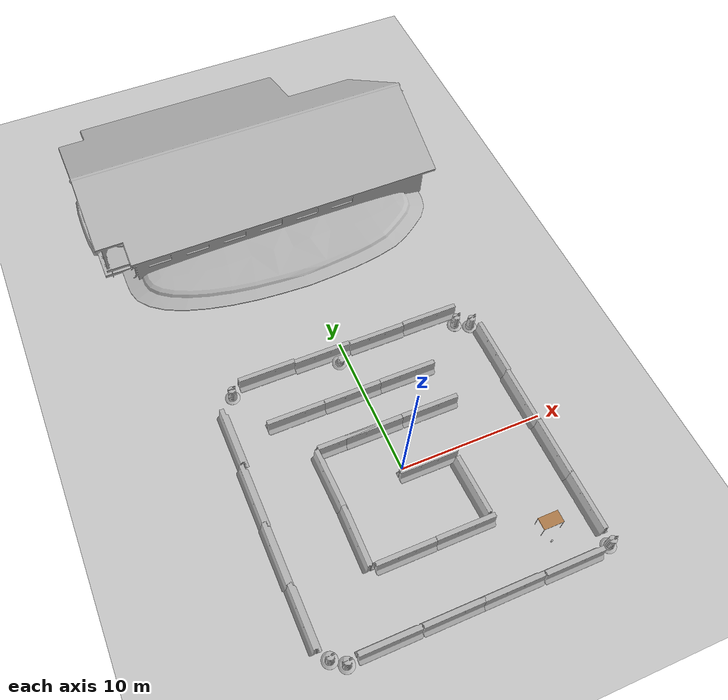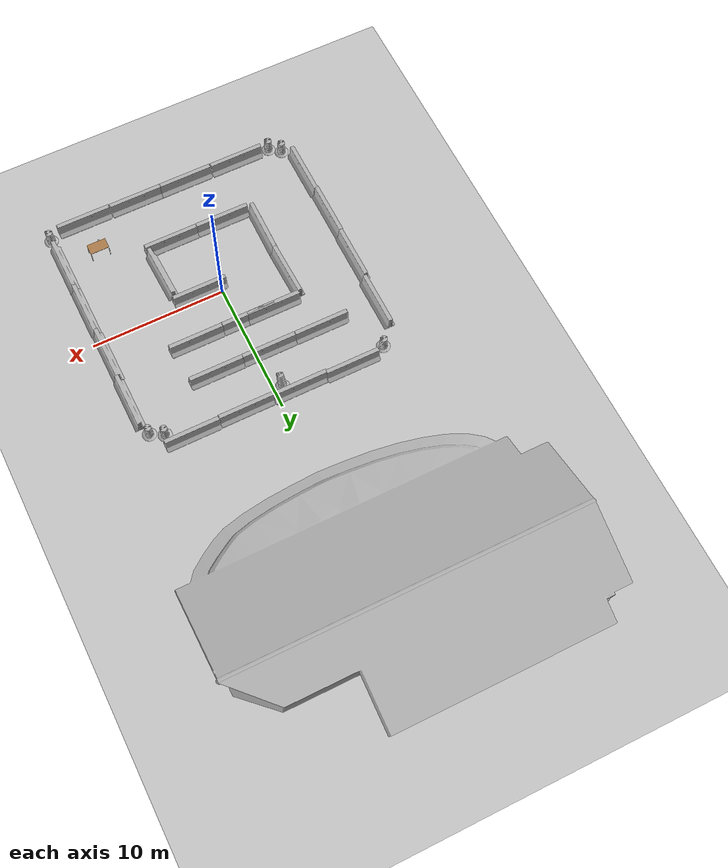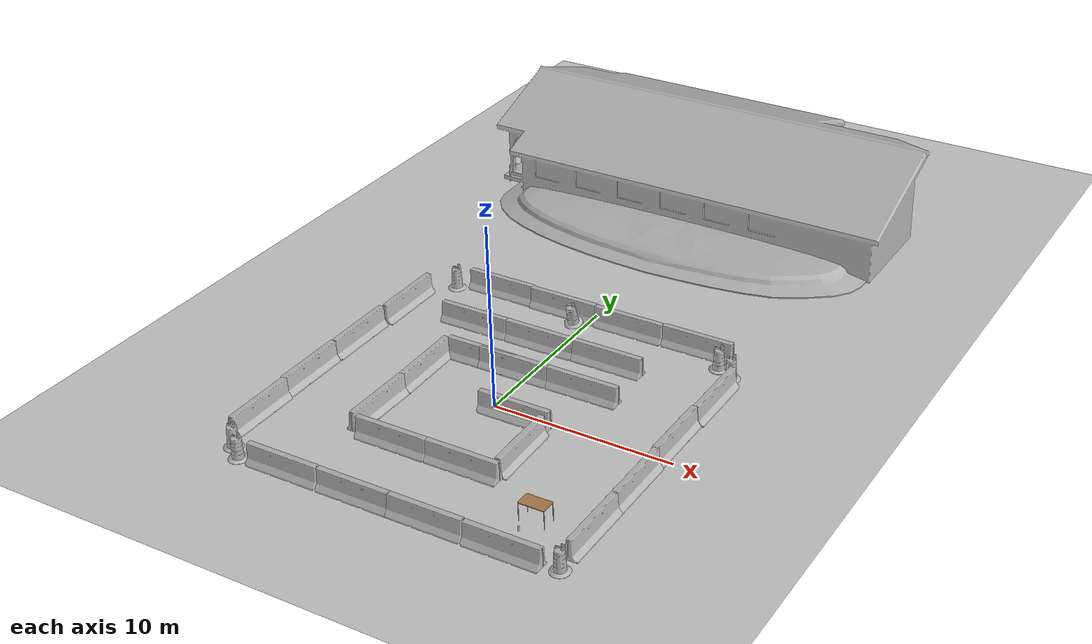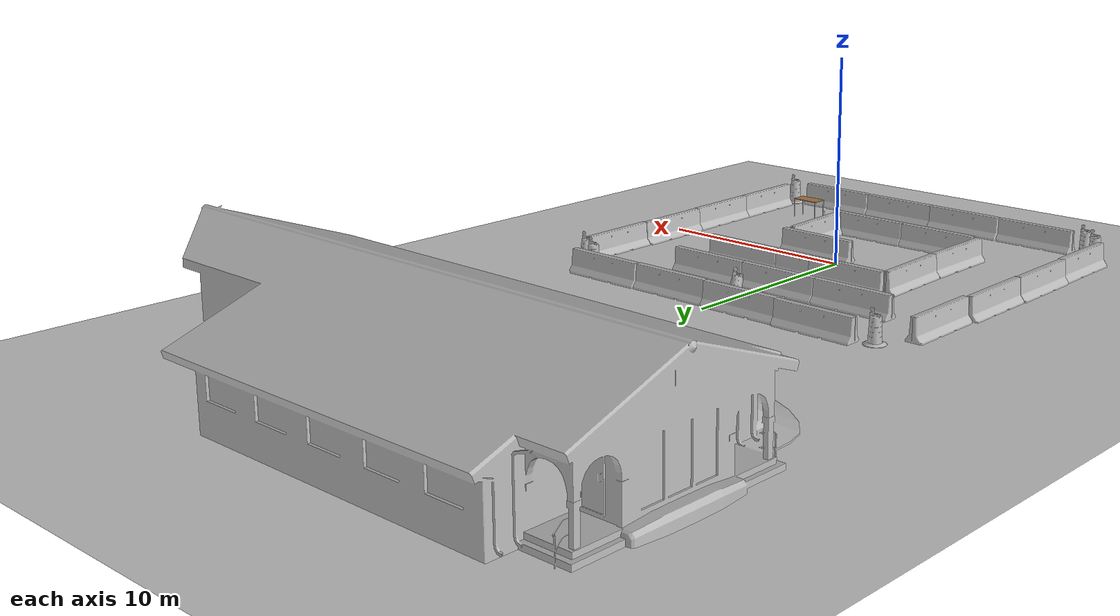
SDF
<sdf version="1.6">
 <world name="default">
  <light name="sun" type="directional">
   <pose>0 0 10 0 -0 0</pose>
   <diffuse>0.8 0.8 0.8 1</diffuse>
   <specular>0.2 0.2 0.2 1</specular>
   <attenuation>
    <range>1000</range>
    <constant>0.9</constant>
    <linear>0.01</linear>
    <quadratic>0.001</quadratic>
   </attenuation>
   <direction>-0.5 0.1 -0.9</direction>
  </light>
  <model name="ground_plane">
   <static>1</static>
   <link name="link">
    <collision name="collision">
     <geometry><plane><normal>0 0 1</normal><size>100 100</size></plane></geometry>
     <surface><friction><ode><mu>100</mu><mu2>50</mu2></ode></friction></surface>
    </collision>
    <visual name="visual">
     <cast_shadows>0</cast_shadows>
     <geometry><plane><normal>0 0 1</normal><size>100 100</size></plane></geometry>
     <material>
      <script><uri>file://media/materials/scripts/gazebo.material</uri><name>Gazebo/Grey</name></script>
     </material>
    </visual>
   </link>
  </model>
  <gravity>0 0 -9.8</gravity>
  <magnetic_field>6e-06 2.3e-05 -4.2e-05</magnetic_field>
  <atmosphere type="adiabatic"/>
  <physics name="default_physics" default="0" type="ode">
   <max_step_size>0.001</max_step_size>
   <real_time_factor>1</real_time_factor>
   <real_time_update_rate>1000</real_time_update_rate>
  </physics>
  <scene><ambient>0.4 0.4 0.4 1</ambient><background>0.7 0.7 0.7 1</background><shadows>1</shadows></scene>
  <spherical_coordinates>
   <surface_model>EARTH_WGS84</surface_model>
   <latitude_deg>0</latitude_deg>
   <longitude_deg>0</longitude_deg>
   <elevation>0</elevation>
   <heading_deg>0</heading_deg>
  </spherical_coordinates>
  <model name="jersey_barrier">
   <static>1</static>
   <link name="link">
    <visual name="visual">
     <geometry>
      <mesh><uri>model://jersey_barrier/meshes/jersey_barrier.dae</uri><scale>1 1 1</scale></mesh>
     </geometry>
    </visual>
    <collision name="upright">
     <pose>0 0 0.5715 0 -0 0</pose>
     <geometry><box><size>4.06542 0.3063 1.143</size></box></geometry>
    </collision>
    <collision name="base">
     <pose>0 0 0.032258 0 -0 0</pose>
     <geometry><box><size>4.06542 0.8107 0.064516</size></box></geometry>
    </collision>
    <collision name="base2">
     <pose>0 0 0.1 0 -0 0</pose>
     <geometry><box><size>4.06542 0.65 0.1</size></box></geometry>
    </collision>
    <collision name="base3">
     <pose>0 0 0.2 0 -0 0</pose>
     <geometry><box><size>4.06542 0.5 0.1</size></box></geometry>
    </collision>
    <collision name="left-angle">
     <pose>0 -0.224 0.2401 0.9 -0 0</pose>
     <geometry><box><size>4.06542 0.5 0.064516</size></box></geometry>
    </collision>
    <collision name="right-angle">
     <pose>0 0.224 0.2401 -0.9 0 0</pose>
     <geometry><box><size>4.06542 0.5 0.064516</size></box></geometry>
    </collision>
   </link>
   <pose>-5.65677 9.4608 0 0 -0 0</pose>
  </model>
  <model name="jersey_barrier_clone">
   <static>1</static>
   <link name="link">
    <visual name="visual">
     <geometry>
      <mesh><uri>model://jersey_barrier/meshes/jersey_barrier.dae</uri><scale>1 1 1</scale></mesh>
     </geometry>
    </visual>
    <collision name="upright">
     <pose>0 0 0.5715 0 -0 0</pose>
     <geometry><box><size>4.06542 0.3063 1.143</size></box></geometry>
    </collision>
    <collision name="base">
     <pose>0 0 0.032258 0 -0 0</pose>
     <geometry><box><size>4.06542 0.8107 0.064516</size></box></geometry>
    </collision>
    <collision name="base2">
     <pose>0 0 0.1 0 -0 0</pose>
     <geometry><box><size>4.06542 0.65 0.1</size></box></geometry>
    </collision>
    <collision name="base3">
     <pose>0 0 0.2 0 -0 0</pose>
     <geometry><box><size>4.06542 0.5 0.1</size></box></geometry>
    </collision>
    <collision name="left-angle">
     <pose>0 -0.224 0.2401 0.9 -0 0</pose>
     <geometry><box><size>4.06542 0.5 0.064516</size></box></geometry>
    </collision>
    <collision name="right-angle">
     <pose>0 0.224 0.2401 -0.9 0 0</pose>
     <geometry><box><size>4.06542 0.5 0.064516</size></box></geometry>
    </collision>
   </link>
   <pose>-1.65987 9.36075 0 0 -0 0</pose>
  </model>
  <model name="jersey_barrier_clone_0">
   <static>1</static>
   <link name="link">
    <visual name="visual">
     <geometry>
      <mesh><uri>model://jersey_barrier/meshes/jersey_barrier.dae</uri><scale>1 1 1</scale></mesh>
     </geometry>
    </visual>
    <collision name="upright">
     <pose>0 0 0.5715 0 -0 0</pose>
     <geometry><box><size>4.06542 0.3063 1.143</size></box></geometry>
    </collision>
    <collision name="base">
     <pose>0 0 0.032258 0 -0 0</pose>
     <geometry><box><size>4.06542 0.8107 0.064516</size></box></geometry>
    </collision>
    <collision name="base2">
     <pose>0 0 0.1 0 -0 0</pose>
     <geometry><box><size>4.06542 0.65 0.1</size></box></geometry>
    </collision>
    <collision name="base3">
     <pose>0 0 0.2 0 -0 0</pose>
     <geometry><box><size>4.06542 0.5 0.1</size></box></geometry>
    </collision>
    <collision name="left-angle">
     <pose>0 -0.224 0.2401 0.9 -0 0</pose>
     <geometry><box><size>4.06542 0.5 0.064516</size></box></geometry>
    </collision>
    <collision name="right-angle">
     <pose>0 0.224 0.2401 -0.9 0 0</pose>
     <geometry><box><size>4.06542 0.5 0.064516</size></box></geometry>
    </collision>
   </link>
   <pose>2.39773 9.29085 0 0 -0 0</pose>
  </model>
  <model name="jersey_barrier_clone_1">
   <static>1</static>
   <link name="link">
    <visual name="visual">
     <geometry>
      <mesh><uri>model://jersey_barrier/meshes/jersey_barrier.dae</uri><scale>1 1 1</scale></mesh>
     </geometry>
    </visual>
    <collision name="upright">
     <pose>0 0 0.5715 0 -0 0</pose>
     <geometry><box><size>4.06542 0.3063 1.143</size></box></geometry>
    </collision>
    <collision name="base">
     <pose>0 0 0.032258 0 -0 0</pose>
     <geometry><box><size>4.06542 0.8107 0.064516</size></box></geometry>
    </collision>
    <collision name="base2">
     <pose>0 0 0.1 0 -0 0</pose>
     <geometry><box><size>4.06542 0.65 0.1</size></box></geometry>
    </collision>
    <collision name="base3">
     <pose>0 0 0.2 0 -0 0</pose>
     <geometry><box><size>4.06542 0.5 0.1</size></box></geometry>
    </collision>
    <collision name="left-angle">
     <pose>0 -0.224 0.2401 0.9 -0 0</pose>
     <geometry><box><size>4.06542 0.5 0.064516</size></box></geometry>
    </collision>
    <collision name="right-angle">
     <pose>0 0.224 0.2401 -0.9 0 0</pose>
     <geometry><box><size>4.06542 0.5 0.064516</size></box></geometry>
    </collision>
   </link>
   <pose>6.45464 9.33993 0 0 -0 0</pose>
  </model>
  <model name="jersey_barrier_clone_3">
   <static>1</static>
   <link name="link">
    <visual name="visual">
     <geometry>
      <mesh><uri>model://jersey_barrier/meshes/jersey_barrier.dae</uri><scale>1 1 1</scale></mesh>
     </geometry>
    </visual>
    <collision name="upright">
     <pose>0 0 0.5715 0 -0 0</pose>
     <geometry><box><size>4.06542 0.3063 1.143</size></box></geometry>
    </collision>
    <collision name="base">
     <pose>0 0 0.032258 0 -0 0</pose>
     <geometry><box><size>4.06542 0.8107 0.064516</size></box></geometry>
    </collision>
    <collision name="base2">
     <pose>0 0 0.1 0 -0 0</pose>
     <geometry><box><size>4.06542 0.65 0.1</size></box></geometry>
    </collision>
    <collision name="base3">
     <pose>0 0 0.2 0 -0 0</pose>
     <geometry><box><size>4.06542 0.5 0.1</size></box></geometry>
    </collision>
    <collision name="left-angle">
     <pose>0 -0.224 0.2401 0.9 -0 0</pose>
     <geometry><box><size>4.06542 0.5 0.064516</size></box></geometry>
    </collision>
    <collision name="right-angle">
     <pose>0 0.224 0.2401 -0.9 0 0</pose>
     <geometry><box><size>4.06542 0.5 0.064516</size></box></geometry>
    </collision>
   </link>
   <pose>9.44656 5.35522 0 0 0 -1.56865</pose>
  </model>
  <model name="jersey_barrier_clone_3_clone">
   <static>1</static>
   <link name="link">
    <visual name="visual">
     <geometry>
      <mesh><uri>model://jersey_barrier/meshes/jersey_barrier.dae</uri><scale>1 1 1</scale></mesh>
     </geometry>
    </visual>
    <collision name="upright">
     <pose>0 0 0.5715 0 -0 0</pose>
     <geometry><box><size>4.06542 0.3063 1.143</size></box></geometry>
    </collision>
    <collision name="base">
     <pose>0 0 0.032258 0 -0 0</pose>
     <geometry><box><size>4.06542 0.8107 0.064516</size></box></geometry>
    </collision>
    <collision name="base2">
     <pose>0 0 0.1 0 -0 0</pose>
     <geometry><box><size>4.06542 0.65 0.1</size></box></geometry>
    </collision>
    <collision name="base3">
     <pose>0 0 0.2 0 -0 0</pose>
     <geometry><box><size>4.06542 0.5 0.1</size></box></geometry>
    </collision>
    <collision name="left-angle">
     <pose>0 -0.224 0.2401 0.9 -0 0</pose>
     <geometry><box><size>4.06542 0.5 0.064516</size></box></geometry>
    </collision>
    <collision name="right-angle">
     <pose>0 0.224 0.2401 -0.9 0 0</pose>
     <geometry><box><size>4.06542 0.5 0.064516</size></box></geometry>
    </collision>
   </link>
   <pose>9.3727 1.33119 0 0 0 -1.56865</pose>
  </model>
  <model name="jersey_barrier_clone_3_clone_0">
   <static>1</static>
   <link name="link">
    <visual name="visual">
     <geometry>
      <mesh><uri>model://jersey_barrier/meshes/jersey_barrier.dae</uri><scale>1 1 1</scale></mesh>
     </geometry>
    </visual>
    <collision name="upright">
     <pose>0 0 0.5715 0 -0 0</pose>
     <geometry><box><size>4.06542 0.3063 1.143</size></box></geometry>
    </collision>
    <collision name="base">
     <pose>0 0 0.032258 0 -0 0</pose>
     <geometry><box><size>4.06542 0.8107 0.064516</size></box></geometry>
    </collision>
    <collision name="base2">
     <pose>0 0 0.1 0 -0 0</pose>
     <geometry><box><size>4.06542 0.65 0.1</size></box></geometry>
    </collision>
    <collision name="base3">
     <pose>0 0 0.2 0 -0 0</pose>
     <geometry><box><size>4.06542 0.5 0.1</size></box></geometry>
    </collision>
    <collision name="left-angle">
     <pose>0 -0.224 0.2401 0.9 -0 0</pose>
     <geometry><box><size>4.06542 0.5 0.064516</size></box></geometry>
    </collision>
    <collision name="right-angle">
     <pose>0 0.224 0.2401 -0.9 0 0</pose>
     <geometry><box><size>4.06542 0.5 0.064516</size></box></geometry>
    </collision>
   </link>
   <pose>9.4315 -2.6268 0 0 0 -1.56865</pose>
  </model>
  <model name="jersey_barrier_clone_3_clone_1">
   <static>1</static>
   <link name="link">
    <visual name="visual">
     <geometry>
      <mesh><uri>model://jersey_barrier/meshes/jersey_barrier.dae</uri><scale>1 1 1</scale></mesh>
     </geometry>
    </visual>
    <collision name="upright">
     <pose>0 0 0.5715 0 -0 0</pose>
     <geometry><box><size>4.06542 0.3063 1.143</size></box></geometry>
    </collision>
    <collision name="base">
     <pose>0 0 0.032258 0 -0 0</pose>
     <geometry><box><size>4.06542 0.8107 0.064516</size></box></geometry>
    </collision>
    <collision name="base2">
     <pose>0 0 0.1 0 -0 0</pose>
     <geometry><box><size>4.06542 0.65 0.1</size></box></geometry>
    </collision>
    <collision name="base3">
     <pose>0 0 0.2 0 -0 0</pose>
     <geometry><box><size>4.06542 0.5 0.1</size></box></geometry>
    </collision>
    <collision name="left-angle">
     <pose>0 -0.224 0.2401 0.9 -0 0</pose>
     <geometry><box><size>4.06542 0.5 0.064516</size></box></geometry>
    </collision>
    <collision name="right-angle">
     <pose>0 0.224 0.2401 -0.9 0 0</pose>
     <geometry><box><size>4.06542 0.5 0.064516</size></box></geometry>
    </collision>
   </link>
   <pose>9.44969 -6.53485 0 0 0 -1.56865</pose>
  </model>
  <model name="jersey_barrier_clone_2_clone">
   <static>1</static>
   <link name="link">
    <visual name="visual">
     <geometry>
      <mesh><uri>model://jersey_barrier/meshes/jersey_barrier.dae</uri><scale>1 1 1</scale></mesh>
     </geometry>
    </visual>
    <collision name="upright">
     <pose>0 0 0.5715 0 -0 0</pose>
     <geometry><box><size>4.06542 0.3063 1.143</size></box></geometry>
    </collision>
    <collision name="base">
     <pose>0 0 0.032258 0 -0 0</pose>
     <geometry><box><size>4.06542 0.8107 0.064516</size></box></geometry>
    </collision>
    <collision name="base2">
     <pose>0 0 0.1 0 -0 0</pose>
     <geometry><box><size>4.06542 0.65 0.1</size></box></geometry>
    </collision>
    <collision name="base3">
     <pose>0 0 0.2 0 -0 0</pose>
     <geometry><box><size>4.06542 0.5 0.1</size></box></geometry>
    </collision>
    <collision name="left-angle">
     <pose>0 -0.224 0.2401 0.9 -0 0</pose>
     <geometry><box><size>4.06542 0.5 0.064516</size></box></geometry>
    </collision>
    <collision name="right-angle">
     <pose>0 0.224 0.2401 -0.9 0 0</pose>
     <geometry><box><size>4.06542 0.5 0.064516</size></box></geometry>
    </collision>
   </link>
   <pose>6.70657 -9.54347 0 0 -0 0</pose>
  </model>
  <model name="jersey_barrier_clone_2_clone_0">
   <static>1</static>
   <link name="link">
    <visual name="visual">
     <geometry>
      <mesh><uri>model://jersey_barrier/meshes/jersey_barrier.dae</uri><scale>1 1 1</scale></mesh>
     </geometry>
    </visual>
    <collision name="upright">
     <pose>0 0 0.5715 0 -0 0</pose>
     <geometry><box><size>4.06542 0.3063 1.143</size></box></geometry>
    </collision>
    <collision name="base">
     <pose>0 0 0.032258 0 -0 0</pose>
     <geometry><box><size>4.06542 0.8107 0.064516</size></box></geometry>
    </collision>
    <collision name="base2">
     <pose>0 0 0.1 0 -0 0</pose>
     <geometry><box><size>4.06542 0.65 0.1</size></box></geometry>
    </collision>
    <collision name="base3">
     <pose>0 0 0.2 0 -0 0</pose>
     <geometry><box><size>4.06542 0.5 0.1</size></box></geometry>
    </collision>
    <collision name="left-angle">
     <pose>0 -0.224 0.2401 0.9 -0 0</pose>
     <geometry><box><size>4.06542 0.5 0.064516</size></box></geometry>
    </collision>
    <collision name="right-angle">
     <pose>0 0.224 0.2401 -0.9 0 0</pose>
     <geometry><box><size>4.06542 0.5 0.064516</size></box></geometry>
    </collision>
   </link>
   <pose>2.59616 -9.50928 0 0 -0 0</pose>
  </model>
  <model name="jersey_barrier_clone_2_clone_1">
   <static>1</static>
   <link name="link">
    <visual name="visual">
     <geometry>
      <mesh><uri>model://jersey_barrier/meshes/jersey_barrier.dae</uri><scale>1 1 1</scale></mesh>
     </geometry>
    </visual>
    <collision name="upright">
     <pose>0 0 0.5715 0 -0 0</pose>
     <geometry><box><size>4.06542 0.3063 1.143</size></box></geometry>
    </collision>
    <collision name="base">
     <pose>0 0 0.032258 0 -0 0</pose>
     <geometry><box><size>4.06542 0.8107 0.064516</size></box></geometry>
    </collision>
    <collision name="base2">
     <pose>0 0 0.1 0 -0 0</pose>
     <geometry><box><size>4.06542 0.65 0.1</size></box></geometry>
    </collision>
    <collision name="base3">
     <pose>0 0 0.2 0 -0 0</pose>
     <geometry><box><size>4.06542 0.5 0.1</size></box></geometry>
    </collision>
    <collision name="left-angle">
     <pose>0 -0.224 0.2401 0.9 -0 0</pose>
     <geometry><box><size>4.06542 0.5 0.064516</size></box></geometry>
    </collision>
    <collision name="right-angle">
     <pose>0 0.224 0.2401 -0.9 0 0</pose>
     <geometry><box><size>4.06542 0.5 0.064516</size></box></geometry>
    </collision>
   </link>
   <pose>-1.33414 -9.50852 0 0 -0 0</pose>
  </model>
  <model name="jersey_barrier_clone_2_clone_2">
   <static>1</static>
   <link name="link">
    <visual name="visual">
     <geometry>
      <mesh><uri>model://jersey_barrier/meshes/jersey_barrier.dae</uri><scale>1 1 1</scale></mesh>
     </geometry>
    </visual>
    <collision name="upright">
     <pose>0 0 0.5715 0 -0 0</pose>
     <geometry><box><size>4.06542 0.3063 1.143</size></box></geometry>
    </collision>
    <collision name="base">
     <pose>0 0 0.032258 0 -0 0</pose>
     <geometry><box><size>4.06542 0.8107 0.064516</size></box></geometry>
    </collision>
    <collision name="base2">
     <pose>0 0 0.1 0 -0 0</pose>
     <geometry><box><size>4.06542 0.65 0.1</size></box></geometry>
    </collision>
    <collision name="base3">
     <pose>0 0 0.2 0 -0 0</pose>
     <geometry><box><size>4.06542 0.5 0.1</size></box></geometry>
    </collision>
    <collision name="left-angle">
     <pose>0 -0.224 0.2401 0.9 -0 0</pose>
     <geometry><box><size>4.06542 0.5 0.064516</size></box></geometry>
    </collision>
    <collision name="right-angle">
     <pose>0 0.224 0.2401 -0.9 0 0</pose>
     <geometry><box><size>4.06542 0.5 0.064516</size></box></geometry>
    </collision>
   </link>
   <pose>-5.44605 -9.49634 0 0 -0 0</pose>
  </model>
  <model name="jersey_barrier_clone_3_clone_1_clone">
   <static>1</static>
   <link name="link">
    <visual name="visual">
     <geometry>
      <mesh><uri>model://jersey_barrier/meshes/jersey_barrier.dae</uri><scale>1 1 1</scale></mesh>
     </geometry>
    </visual>
    <collision name="upright">
     <pose>0 0 0.5715 0 -0 0</pose>
     <geometry><box><size>4.06542 0.3063 1.143</size></box></geometry>
    </collision>
    <collision name="base">
     <pose>0 0 0.032258 0 -0 0</pose>
     <geometry><box><size>4.06542 0.8107 0.064516</size></box></geometry>
    </collision>
    <collision name="base2">
     <pose>0 0 0.1 0 -0 0</pose>
     <geometry><box><size>4.06542 0.65 0.1</size></box></geometry>
    </collision>
    <collision name="base3">
     <pose>0 0 0.2 0 -0 0</pose>
     <geometry><box><size>4.06542 0.5 0.1</size></box></geometry>
    </collision>
    <collision name="left-angle">
     <pose>0 -0.224 0.2401 0.9 -0 0</pose>
     <geometry><box><size>4.06542 0.5 0.064516</size></box></geometry>
    </collision>
    <collision name="right-angle">
     <pose>0 0.224 0.2401 -0.9 0 0</pose>
     <geometry><box><size>4.06542 0.5 0.064516</size></box></geometry>
    </collision>
   </link>
   <pose>-9.54289 -6.33149 0 0 0 -1.56865</pose>
  </model>
  <model name="jersey_barrier_clone_3_clone_1_clone_0">
   <static>1</static>
   <link name="link">
    <visual name="visual">
     <geometry>
      <mesh><uri>model://jersey_barrier/meshes/jersey_barrier.dae</uri><scale>1 1 1</scale></mesh>
     </geometry>
    </visual>
    <collision name="upright">
     <pose>0 0 0.5715 0 -0 0</pose>
     <geometry><box><size>4.06542 0.3063 1.143</size></box></geometry>
    </collision>
    <collision name="base">
     <pose>0 0 0.032258 0 -0 0</pose>
     <geometry><box><size>4.06542 0.8107 0.064516</size></box></geometry>
    </collision>
    <collision name="base2">
     <pose>0 0 0.1 0 -0 0</pose>
     <geometry><box><size>4.06542 0.65 0.1</size></box></geometry>
    </collision>
    <collision name="base3">
     <pose>0 0 0.2 0 -0 0</pose>
     <geometry><box><size>4.06542 0.5 0.1</size></box></geometry>
    </collision>
    <collision name="left-angle">
     <pose>0 -0.224 0.2401 0.9 -0 0</pose>
     <geometry><box><size>4.06542 0.5 0.064516</size></box></geometry>
    </collision>
    <collision name="right-angle">
     <pose>0 0.224 0.2401 -0.9 0 0</pose>
     <geometry><box><size>4.06542 0.5 0.064516</size></box></geometry>
    </collision>
   </link>
   <pose>-9.6221 -2.35336 0 0 0 -1.56865</pose>
  </model>
  <model name="jersey_barrier_clone_3_clone_1_clone_1">
   <static>1</static>
   <link name="link">
    <visual name="visual">
     <geometry>
      <mesh><uri>model://jersey_barrier/meshes/jersey_barrier.dae</uri><scale>1 1 1</scale></mesh>
     </geometry>
    </visual>
    <collision name="upright">
     <pose>0 0 0.5715 0 -0 0</pose>
     <geometry><box><size>4.06542 0.3063 1.143</size></box></geometry>
    </collision>
    <collision name="base">
     <pose>0 0 0.032258 0 -0 0</pose>
     <geometry><box><size>4.06542 0.8107 0.064516</size></box></geometry>
    </collision>
    <collision name="base2">
     <pose>0 0 0.1 0 -0 0</pose>
     <geometry><box><size>4.06542 0.65 0.1</size></box></geometry>
    </collision>
    <collision name="base3">
     <pose>0 0 0.2 0 -0 0</pose>
     <geometry><box><size>4.06542 0.5 0.1</size></box></geometry>
    </collision>
    <collision name="left-angle">
     <pose>0 -0.224 0.2401 0.9 -0 0</pose>
     <geometry><box><size>4.06542 0.5 0.064516</size></box></geometry>
    </collision>
    <collision name="right-angle">
     <pose>0 0.224 0.2401 -0.9 0 0</pose>
     <geometry><box><size>4.06542 0.5 0.064516</size></box></geometry>
    </collision>
   </link>
   <pose>-9.58952 1.69745 0 0 0 -1.56865</pose>
  </model>
  <model name="jersey_barrier_clone_3_clone_1_clone_2">
   <static>1</static>
   <link name="link">
    <visual name="visual">
     <geometry>
      <mesh><uri>model://jersey_barrier/meshes/jersey_barrier.dae</uri><scale>1 1 1</scale></mesh>
     </geometry>
    </visual>
    <collision name="upright">
     <pose>0 0 0.5715 0 -0 0</pose>
     <geometry><box><size>4.06542 0.3063 1.143</size></box></geometry>
    </collision>
    <collision name="base">
     <pose>0 0 0.032258 0 -0 0</pose>
     <geometry><box><size>4.06542 0.8107 0.064516</size></box></geometry>
    </collision>
    <collision name="base2">
     <pose>0 0 0.1 0 -0 0</pose>
     <geometry><box><size>4.06542 0.65 0.1</size></box></geometry>
    </collision>
    <collision name="base3">
     <pose>0 0 0.2 0 -0 0</pose>
     <geometry><box><size>4.06542 0.5 0.1</size></box></geometry>
    </collision>
    <collision name="left-angle">
     <pose>0 -0.224 0.2401 0.9 -0 0</pose>
     <geometry><box><size>4.06542 0.5 0.064516</size></box></geometry>
    </collision>
    <collision name="right-angle">
     <pose>0 0.224 0.2401 -0.9 0 0</pose>
     <geometry><box><size>4.06542 0.5 0.064516</size></box></geometry>
    </collision>
   </link>
   <pose>-9.44715 5.83721 0 0 0 -1.56865</pose>
  </model>
  <model name="Construction Barrel">
   <link name="link">
    <inertial>
     <pose>0 0 0.4 0 -0 0</pose>
     <mass>500</mass>
     <inertia><ixx>51.2096</ixx><iyy>51.2096</iyy><izz>25</izz><ixy>0</ixy><ixz>0</ixz><iyz>0</iyz></inertia>
    </inertial>
    <collision name="collision">
     <geometry>
      <mesh><uri>model://construction_barrel/meshes/construction_barrel.dae</uri><scale>1 1 1</scale></mesh>
     </geometry>
    </collision>
    <visual name="visual">
     <geometry>
      <mesh><uri>model://construction_barrel/meshes/construction_barrel.dae</uri><scale>1 1 1</scale></mesh>
     </geometry>
    </visual>
   </link>
   <pose>9.07426 7.91043 0 0 0 -8.1e-05</pose>
  </model>
  <model name="Construction Barrel_0">
   <link name="link">
    <inertial>
     <pose>0 0 0.4 0 -0 0</pose>
     <mass>500</mass>
     <inertia><ixx>51.2096</ixx><iyy>51.2096</iyy><izz>25</izz><ixy>0</ixy><ixz>0</ixz><iyz>0</iyz></inertia>
    </inertial>
    <collision name="collision">
     <geometry>
      <mesh><uri>model://construction_barrel/meshes/construction_barrel.dae</uri><scale>1 1 1</scale></mesh>
     </geometry>
    </collision>
    <visual name="visual">
     <geometry>
      <mesh><uri>model://construction_barrel/meshes/construction_barrel.dae</uri><scale>1 1 1</scale></mesh>
     </geometry>
    </visual>
   </link>
   <pose>8.12815 8.41625 -2e-06 1e-06 8e-06 -5.2e-05</pose>
  </model>
  <model name="Construction Barrel_1">
   <link name="link">
    <inertial>
     <pose>0 0 0.4 0 -0 0</pose>
     <mass>500</mass>
     <inertia><ixx>51.2096</ixx><iyy>51.2096</iyy><izz>25</izz><ixy>0</ixy><ixz>0</ixz><iyz>0</iyz></inertia>
    </inertial>
    <collision name="collision">
     <geometry>
      <mesh><uri>model://construction_barrel/meshes/construction_barrel.dae</uri><scale>1 1 1</scale></mesh>
     </geometry>
    </collision>
    <visual name="visual">
     <geometry>
      <mesh><uri>model://construction_barrel/meshes/construction_barrel.dae</uri><scale>1 1 1</scale></mesh>
     </geometry>
    </visual>
   </link>
   <pose>-0.646683 8.63394 0.138358 0.270169 -0.053738 0.235519</pose>
  </model>
  <model name="Construction Barrel_2">
   <link name="link">
    <inertial>
     <pose>0 0 0.4 0 -0 0</pose>
     <mass>500</mass>
     <inertia><ixx>51.2096</ixx><iyy>51.2096</iyy><izz>25</izz><ixy>0</ixy><ixz>0</ixz><iyz>0</iyz></inertia>
    </inertial>
    <collision name="collision">
     <geometry>
      <mesh><uri>model://construction_barrel/meshes/construction_barrel.dae</uri><scale>1 1 1</scale></mesh>
     </geometry>
    </collision>
    <visual name="visual">
     <geometry>
      <mesh><uri>model://construction_barrel/meshes/construction_barrel.dae</uri><scale>1 1 1</scale></mesh>
     </geometry>
    </visual>
   </link>
   <pose>-8.34374 8.93843 -2e-06 1e-06 8e-06 -5.3e-05</pose>
  </model>
  <model name="Construction Barrel_3">
   <link name="link">
    <inertial>
     <pose>0 0 0.4 0 -0 0</pose>
     <mass>500</mass>
     <inertia><ixx>51.2096</ixx><iyy>51.2096</iyy><izz>25</izz><ixy>0</ixy><ixz>0</ixz><iyz>0</iyz></inertia>
    </inertial>
    <collision name="collision">
     <geometry>
      <mesh><uri>model://construction_barrel/meshes/construction_barrel.dae</uri><scale>1 1 1</scale></mesh>
     </geometry>
    </collision>
    <visual name="visual">
     <geometry>
      <mesh><uri>model://construction_barrel/meshes/construction_barrel.dae</uri><scale>1 1 1</scale></mesh>
     </geometry>
    </visual>
   </link>
   <pose>9.45353 -9.29441 0 0 0 -7.4e-05</pose>
  </model>
  <model name="Construction Barrel_4">
   <link name="link">
    <inertial>
     <pose>0 0 0.4 0 -0 0</pose>
     <mass>500</mass>
     <inertia><ixx>51.2096</ixx><iyy>51.2096</iyy><izz>25</izz><ixy>0</ixy><ixz>0</ixz><iyz>0</iyz></inertia>
    </inertial>
    <collision name="collision">
     <geometry>
      <mesh><uri>model://construction_barrel/meshes/construction_barrel.dae</uri><scale>1 1 1</scale></mesh>
     </geometry>
    </collision>
    <visual name="visual">
     <geometry>
      <mesh><uri>model://construction_barrel/meshes/construction_barrel.dae</uri><scale>1 1 1</scale></mesh>
     </geometry>
    </visual>
   </link>
   <pose>-8.13328 -9.57183 0 0 0 -0.000563</pose>
  </model>
  <model name="Construction Barrel_5">
   <link name="link">
    <inertial>
     <pose>0 0 0.4 0 -0 0</pose>
     <mass>500</mass>
     <inertia><ixx>51.2096</ixx><iyy>51.2096</iyy><izz>25</izz><ixy>0</ixy><ixz>0</ixz><iyz>0</iyz></inertia>
    </inertial>
    <collision name="collision">
     <geometry>
      <mesh><uri>model://construction_barrel/meshes/construction_barrel.dae</uri><scale>1 1 1</scale></mesh>
     </geometry>
    </collision>
    <visual name="visual">
     <geometry>
      <mesh><uri>model://construction_barrel/meshes/construction_barrel.dae</uri><scale>1 1 1</scale></mesh>
     </geometry>
    </visual>
   </link>
   <pose>-8.93861 -8.96017 0 0 0 -0.000456</pose>
  </model>
  <model name="jersey_barrier_0">
   <static>1</static>
   <link name="link">
    <visual name="visual">
     <geometry>
      <mesh><uri>model://jersey_barrier/meshes/jersey_barrier.dae</uri><scale>1 1 1</scale></mesh>
     </geometry>
    </visual>
    <collision name="upright">
     <pose>0 0 0.5715 0 -0 0</pose>
     <geometry><box><size>4.06542 0.3063 1.143</size></box></geometry>
    </collision>
    <collision name="base">
     <pose>0 0 0.032258 0 -0 0</pose>
     <geometry><box><size>4.06542 0.8107 0.064516</size></box></geometry>
    </collision>
    <collision name="base2">
     <pose>0 0 0.1 0 -0 0</pose>
     <geometry><box><size>4.06542 0.65 0.1</size></box></geometry>
    </collision>
    <collision name="base3">
     <pose>0 0 0.2 0 -0 0</pose>
     <geometry><box><size>4.06542 0.5 0.1</size></box></geometry>
    </collision>
    <collision name="left-angle">
     <pose>0 -0.224 0.2401 0.9 -0 0</pose>
     <geometry><box><size>4.06542 0.5 0.064516</size></box></geometry>
    </collision>
    <collision name="right-angle">
     <pose>0 0.224 0.2401 -0.9 0 0</pose>
     <geometry><box><size>4.06542 0.5 0.064516</size></box></geometry>
    </collision>
   </link>
   <pose>-4.75193 0.827694 0 0 0 -1.54488</pose>
  </model>
  <model name="jersey_barrier_0_clone">
   <static>1</static>
   <link name="link">
    <visual name="visual">
     <geometry>
      <mesh><uri>model://jersey_barrier/meshes/jersey_barrier.dae</uri><scale>1 1 1</scale></mesh>
     </geometry>
    </visual>
    <collision name="upright">
     <pose>0 0 0.5715 0 -0 0</pose>
     <geometry><box><size>4.06542 0.3063 1.143</size></box></geometry>
    </collision>
    <collision name="base">
     <pose>0 0 0.032258 0 -0 0</pose>
     <geometry><box><size>4.06542 0.8107 0.064516</size></box></geometry>
    </collision>
    <collision name="base2">
     <pose>0 0 0.1 0 -0 0</pose>
     <geometry><box><size>4.06542 0.65 0.1</size></box></geometry>
    </collision>
    <collision name="base3">
     <pose>0 0 0.2 0 -0 0</pose>
     <geometry><box><size>4.06542 0.5 0.1</size></box></geometry>
    </collision>
    <collision name="left-angle">
     <pose>0 -0.224 0.2401 0.9 -0 0</pose>
     <geometry><box><size>4.06542 0.5 0.064516</size></box></geometry>
    </collision>
    <collision name="right-angle">
     <pose>0 0.224 0.2401 -0.9 0 0</pose>
     <geometry><box><size>4.06542 0.5 0.064516</size></box></geometry>
    </collision>
   </link>
   <pose>-2.66021 2.94299 0 0 -0 0</pose>
  </model>
  <model name="jersey_barrier_0_clone_0">
   <static>1</static>
   <link name="link">
    <visual name="visual">
     <geometry>
      <mesh><uri>model://jersey_barrier/meshes/jersey_barrier.dae</uri><scale>1 1 1</scale></mesh>
     </geometry>
    </visual>
    <collision name="upright">
     <pose>0 0 0.5715 0 -0 0</pose>
     <geometry><box><size>4.06542 0.3063 1.143</size></box></geometry>
    </collision>
    <collision name="base">
     <pose>0 0 0.032258 0 -0 0</pose>
     <geometry><box><size>4.06542 0.8107 0.064516</size></box></geometry>
    </collision>
    <collision name="base2">
     <pose>0 0 0.1 0 -0 0</pose>
     <geometry><box><size>4.06542 0.65 0.1</size></box></geometry>
    </collision>
    <collision name="base3">
     <pose>0 0 0.2 0 -0 0</pose>
     <geometry><box><size>4.06542 0.5 0.1</size></box></geometry>
    </collision>
    <collision name="left-angle">
     <pose>0 -0.224 0.2401 0.9 -0 0</pose>
     <geometry><box><size>4.06542 0.5 0.064516</size></box></geometry>
    </collision>
    <collision name="right-angle">
     <pose>0 0.224 0.2401 -0.9 0 0</pose>
     <geometry><box><size>4.06542 0.5 0.064516</size></box></geometry>
    </collision>
   </link>
   <pose>3.40005 -2.95093 0 0 0 -1.5374</pose>
  </model>
  <model name="jersey_barrier_0_clone_1">
   <static>1</static>
   <link name="link">
    <visual name="visual">
     <geometry>
      <mesh><uri>model://jersey_barrier/meshes/jersey_barrier.dae</uri><scale>1 1 1</scale></mesh>
     </geometry>
    </visual>
    <collision name="upright">
     <pose>0 0 0.5715 0 -0 0</pose>
     <geometry><box><size>4.06542 0.3063 1.143</size></box></geometry>
    </collision>
    <collision name="base">
     <pose>0 0 0.032258 0 -0 0</pose>
     <geometry><box><size>4.06542 0.8107 0.064516</size></box></geometry>
    </collision>
    <collision name="base2">
     <pose>0 0 0.1 0 -0 0</pose>
     <geometry><box><size>4.06542 0.65 0.1</size></box></geometry>
    </collision>
    <collision name="base3">
     <pose>0 0 0.2 0 -0 0</pose>
     <geometry><box><size>4.06542 0.5 0.1</size></box></geometry>
    </collision>
    <collision name="left-angle">
     <pose>0 -0.224 0.2401 0.9 -0 0</pose>
     <geometry><box><size>4.06542 0.5 0.064516</size></box></geometry>
    </collision>
    <collision name="right-angle">
     <pose>0 0.224 0.2401 -0.9 0 0</pose>
     <geometry><box><size>4.06542 0.5 0.064516</size></box></geometry>
    </collision>
   </link>
   <pose>1.67017 -5.22309 0 0 -0 0</pose>
  </model>
  <model name="jersey_barrier_0_clone_1_clone">
   <static>1</static>
   <link name="link">
    <visual name="visual">
     <geometry>
      <mesh><uri>model://jersey_barrier/meshes/jersey_barrier.dae</uri><scale>1 1 1</scale></mesh>
     </geometry>
    </visual>
    <collision name="upright">
     <pose>0 0 0.5715 0 -0 0</pose>
     <geometry><box><size>4.06542 0.3063 1.143</size></box></geometry>
    </collision>
    <collision name="base">
     <pose>0 0 0.032258 0 -0 0</pose>
     <geometry><box><size>4.06542 0.8107 0.064516</size></box></geometry>
    </collision>
    <collision name="base2">
     <pose>0 0 0.1 0 -0 0</pose>
     <geometry><box><size>4.06542 0.65 0.1</size></box></geometry>
    </collision>
    <collision name="base3">
     <pose>0 0 0.2 0 -0 0</pose>
     <geometry><box><size>4.06542 0.5 0.1</size></box></geometry>
    </collision>
    <collision name="left-angle">
     <pose>0 -0.224 0.2401 0.9 -0 0</pose>
     <geometry><box><size>4.06542 0.5 0.064516</size></box></geometry>
    </collision>
    <collision name="right-angle">
     <pose>0 0.224 0.2401 -0.9 0 0</pose>
     <geometry><box><size>4.06542 0.5 0.064516</size></box></geometry>
    </collision>
   </link>
   <pose>-2.36998 -5.23455 0 0 -0 0</pose>
  </model>
  <model name="jersey_barrier_0_clone_1_clone_clone">
   <static>1</static>
   <link name="link">
    <visual name="visual">
     <geometry>
      <mesh><uri>model://jersey_barrier/meshes/jersey_barrier.dae</uri><scale>1 1 1</scale></mesh>
     </geometry>
    </visual>
    <collision name="upright">
     <pose>0 0 0.5715 0 -0 0</pose>
     <geometry><box><size>4.06542 0.3063 1.143</size></box></geometry>
    </collision>
    <collision name="base">
     <pose>0 0 0.032258 0 -0 0</pose>
     <geometry><box><size>4.06542 0.8107 0.064516</size></box></geometry>
    </collision>
    <collision name="base2">
     <pose>0 0 0.1 0 -0 0</pose>
     <geometry><box><size>4.06542 0.65 0.1</size></box></geometry>
    </collision>
    <collision name="base3">
     <pose>0 0 0.2 0 -0 0</pose>
     <geometry><box><size>4.06542 0.5 0.1</size></box></geometry>
    </collision>
    <collision name="left-angle">
     <pose>0 -0.224 0.2401 0.9 -0 0</pose>
     <geometry><box><size>4.06542 0.5 0.064516</size></box></geometry>
    </collision>
    <collision name="right-angle">
     <pose>0 0.224 0.2401 -0.9 0 0</pose>
     <geometry><box><size>4.06542 0.5 0.064516</size></box></geometry>
    </collision>
   </link>
   <pose>-4.72285 -3.18685 0 0 0 -1.58136</pose>
  </model>
  <model name="jersey_barrier_0_clone_clone">
   <static>1</static>
   <link name="link">
    <visual name="visual">
     <geometry>
      <mesh><uri>model://jersey_barrier/meshes/jersey_barrier.dae</uri><scale>1 1 1</scale></mesh>
     </geometry>
    </visual>
    <collision name="upright">
     <pose>0 0 0.5715 0 -0 0</pose>
     <geometry><box><size>4.06542 0.3063 1.143</size></box></geometry>
    </collision>
    <collision name="base">
     <pose>0 0 0.032258 0 -0 0</pose>
     <geometry><box><size>4.06542 0.8107 0.064516</size></box></geometry>
    </collision>
    <collision name="base2">
     <pose>0 0 0.1 0 -0 0</pose>
     <geometry><box><size>4.06542 0.65 0.1</size></box></geometry>
    </collision>
    <collision name="base3">
     <pose>0 0 0.2 0 -0 0</pose>
     <geometry><box><size>4.06542 0.5 0.1</size></box></geometry>
    </collision>
    <collision name="left-angle">
     <pose>0 -0.224 0.2401 0.9 -0 0</pose>
     <geometry><box><size>4.06542 0.5 0.064516</size></box></geometry>
    </collision>
    <collision name="right-angle">
     <pose>0 0.224 0.2401 -0.9 0 0</pose>
     <geometry><box><size>4.06542 0.5 0.064516</size></box></geometry>
    </collision>
   </link>
   <pose>-0.725913 2.93614 0 0 -0 0</pose>
  </model>
  <model name="jersey_barrier_0_clone_clone_clone">
   <static>1</static>
   <link name="link">
    <visual name="visual">
     <geometry>
      <mesh><uri>model://jersey_barrier/meshes/jersey_barrier.dae</uri><scale>1 1 1</scale></mesh>
     </geometry>
    </visual>
    <collision name="upright">
     <pose>0 0 0.5715 0 -0 0</pose>
     <geometry><box><size>4.06542 0.3063 1.143</size></box></geometry>
    </collision>
    <collision name="base">
     <pose>0 0 0.032258 0 -0 0</pose>
     <geometry><box><size>4.06542 0.8107 0.064516</size></box></geometry>
    </collision>
    <collision name="base2">
     <pose>0 0 0.1 0 -0 0</pose>
     <geometry><box><size>4.06542 0.65 0.1</size></box></geometry>
    </collision>
    <collision name="base3">
     <pose>0 0 0.2 0 -0 0</pose>
     <geometry><box><size>4.06542 0.5 0.1</size></box></geometry>
    </collision>
    <collision name="left-angle">
     <pose>0 -0.224 0.2401 0.9 -0 0</pose>
     <geometry><box><size>4.06542 0.5 0.064516</size></box></geometry>
    </collision>
    <collision name="right-angle">
     <pose>0 0.224 0.2401 -0.9 0 0</pose>
     <geometry><box><size>4.06542 0.5 0.064516</size></box></geometry>
    </collision>
   </link>
   <pose>1.50591 -0.501406 0 0 -0 0</pose>
  </model>
  <model name="jersey_barrier_0_clone_clone_clone_0">
   <static>1</static>
   <link name="link">
    <visual name="visual">
     <geometry>
      <mesh><uri>model://jersey_barrier/meshes/jersey_barrier.dae</uri><scale>1 1 1</scale></mesh>
     </geometry>
    </visual>
    <collision name="upright">
     <pose>0 0 0.5715 0 -0 0</pose>
     <geometry><box><size>4.06542 0.3063 1.143</size></box></geometry>
    </collision>
    <collision name="base">
     <pose>0 0 0.032258 0 -0 0</pose>
     <geometry><box><size>4.06542 0.8107 0.064516</size></box></geometry>
    </collision>
    <collision name="base2">
     <pose>0 0 0.1 0 -0 0</pose>
     <geometry><box><size>4.06542 0.65 0.1</size></box></geometry>
    </collision>
    <collision name="base3">
     <pose>0 0 0.2 0 -0 0</pose>
     <geometry><box><size>4.06542 0.5 0.1</size></box></geometry>
    </collision>
    <collision name="left-angle">
     <pose>0 -0.224 0.2401 0.9 -0 0</pose>
     <geometry><box><size>4.06542 0.5 0.064516</size></box></geometry>
    </collision>
    <collision name="right-angle">
     <pose>0 0.224 0.2401 -0.9 0 0</pose>
     <geometry><box><size>4.06542 0.5 0.064516</size></box></geometry>
    </collision>
   </link>
   <pose>3.31042 2.94836 0 0 -0 0</pose>
  </model>
  <model name="jersey_barrier_0_clone_clone_clone_0_clone">
   <static>1</static>
   <link name="link">
    <visual name="visual">
     <geometry>
      <mesh><uri>model://jersey_barrier/meshes/jersey_barrier.dae</uri><scale>1 1 1</scale></mesh>
     </geometry>
    </visual>
    <collision name="upright">
     <pose>0 0 0.5715 0 -0 0</pose>
     <geometry><box><size>4.06542 0.3063 1.143</size></box></geometry>
    </collision>
    <collision name="base">
     <pose>0 0 0.032258 0 -0 0</pose>
     <geometry><box><size>4.06542 0.8107 0.064516</size></box></geometry>
    </collision>
    <collision name="base2">
     <pose>0 0 0.1 0 -0 0</pose>
     <geometry><box><size>4.06542 0.65 0.1</size></box></geometry>
    </collision>
    <collision name="base3">
     <pose>0 0 0.2 0 -0 0</pose>
     <geometry><box><size>4.06542 0.5 0.1</size></box></geometry>
    </collision>
    <collision name="left-angle">
     <pose>0 -0.224 0.2401 0.9 -0 0</pose>
     <geometry><box><size>4.06542 0.5 0.064516</size></box></geometry>
    </collision>
    <collision name="right-angle">
     <pose>0 0.224 0.2401 -0.9 0 0</pose>
     <geometry><box><size>4.06542 0.5 0.064516</size></box></geometry>
    </collision>
   </link>
   <pose>3.05856 5.81905 0 0 -0 0</pose>
  </model>
  <model name="jersey_barrier_0_clone_clone_clone_0_clone_0">
   <static>1</static>
   <link name="link">
    <visual name="visual">
     <geometry>
      <mesh><uri>model://jersey_barrier/meshes/jersey_barrier.dae</uri><scale>1 1 1</scale></mesh>
     </geometry>
    </visual>
    <collision name="upright">
     <pose>0 0 0.5715 0 -0 0</pose>
     <geometry><box><size>4.06542 0.3063 1.143</size></box></geometry>
    </collision>
    <collision name="base">
     <pose>0 0 0.032258 0 -0 0</pose>
     <geometry><box><size>4.06542 0.8107 0.064516</size></box></geometry>
    </collision>
    <collision name="base2">
     <pose>0 0 0.1 0 -0 0</pose>
     <geometry><box><size>4.06542 0.65 0.1</size></box></geometry>
    </collision>
    <collision name="base3">
     <pose>0 0 0.2 0 -0 0</pose>
     <geometry><box><size>4.06542 0.5 0.1</size></box></geometry>
    </collision>
    <collision name="left-angle">
     <pose>0 -0.224 0.2401 0.9 -0 0</pose>
     <geometry><box><size>4.06542 0.5 0.064516</size></box></geometry>
    </collision>
    <collision name="right-angle">
     <pose>0 0.224 0.2401 -0.9 0 0</pose>
     <geometry><box><size>4.06542 0.5 0.064516</size></box></geometry>
    </collision>
   </link>
   <pose>-0.965716 5.80162 0 0 -0 0</pose>
  </model>
  <model name="jersey_barrier_0_clone_clone_clone_0_clone_0_clone">
   <static>1</static>
   <link name="link">
    <visual name="visual">
     <geometry>
      <mesh><uri>model://jersey_barrier/meshes/jersey_barrier.dae</uri><scale>1 1 1</scale></mesh>
     </geometry>
    </visual>
    <collision name="upright">
     <pose>0 0 0.5715 0 -0 0</pose>
     <geometry><box><size>4.06542 0.3063 1.143</size></box></geometry>
    </collision>
    <collision name="base">
     <pose>0 0 0.032258 0 -0 0</pose>
     <geometry><box><size>4.06542 0.8107 0.064516</size></box></geometry>
    </collision>
    <collision name="base2">
     <pose>0 0 0.1 0 -0 0</pose>
     <geometry><box><size>4.06542 0.65 0.1</size></box></geometry>
    </collision>
    <collision name="base3">
     <pose>0 0 0.2 0 -0 0</pose>
     <geometry><box><size>4.06542 0.5 0.1</size></box></geometry>
    </collision>
    <collision name="left-angle">
     <pose>0 -0.224 0.2401 0.9 -0 0</pose>
     <geometry><box><size>4.06542 0.5 0.064516</size></box></geometry>
    </collision>
    <collision name="right-angle">
     <pose>0 0.224 0.2401 -0.9 0 0</pose>
     <geometry><box><size>4.06542 0.5 0.064516</size></box></geometry>
    </collision>
   </link>
   <pose>-5.01932 5.8057 0 0 -0 0</pose>
  </model>
  <model name="table">
   <static>0</static>
   <link name="link">
    <collision name="surface">
     <pose>0 0 1 0 -0 0</pose>
     <geometry><box><size>1.5 0.8 0.03</size></box></geometry>
     <surface><friction><ode><mu>0.6</mu><mu2>0.6</mu2></ode></friction></surface>
    </collision>
    <visual name="visual1">
     <pose>0 0 1 0 -0 0</pose>
     <geometry><box><size>1.4 0.8 0.04</size></box></geometry>
     <material>
      <script><uri>file://media/materials/scripts/gazebo.material</uri><name>Gazebo/Wood</name></script>
     </material>
    </visual>
    <collision name="front_left_leg">
     <pose>0.68 0.38 0.5 0 -0 0</pose>
     <geometry><cylinder><radius>0.02</radius><length>1</length></cylinder></geometry>
    </collision>
    <visual name="front_left_leg">
     <pose>0.68 0.38 0.5 0 -0 0</pose>
     <geometry><cylinder><radius>0.02</radius><length>1</length></cylinder></geometry>
     <material>
      <script><uri>file://media/materials/scripts/gazebo.material</uri><name>Gazebo/Grey</name></script>
     </material>
    </visual>
    <collision name="front_right_leg">
     <pose>0.68 -0.38 0.5 0 -0 0</pose>
     <geometry><cylinder><radius>0.02</radius><length>1</length></cylinder></geometry>
    </collision>
    <visual name="front_right_leg">
     <pose>0.68 -0.38 0.5 0 -0 0</pose>
     <geometry><cylinder><radius>0.02</radius><length>1</length></cylinder></geometry>
     <material>
      <script><uri>file://media/materials/scripts/gazebo.material</uri><name>Gazebo/Grey</name></script>
     </material>
    </visual>
    <collision name="back_right_leg">
     <pose>-0.68 -0.38 0.5 0 -0 0</pose>
     <geometry><cylinder><radius>0.02</radius><length>1</length></cylinder></geometry>
    </collision>
    <visual name="back_right_leg">
     <pose>-0.68 -0.38 0.5 0 -0 0</pose>
     <geometry><cylinder><radius>0.02</radius><length>1</length></cylinder></geometry>
     <material>
      <script><uri>file://media/materials/scripts/gazebo.material</uri><name>Gazebo/Grey</name></script>
     </material>
    </visual>
    <collision name="back_left_leg">
     <pose>-0.68 0.38 0.5 0 -0 0</pose>
     <geometry><cylinder><radius>0.02</radius><length>1</length></cylinder></geometry>
    </collision>
    <visual name="back_left_leg">
     <pose>-0.68 0.38 0.5 0 -0 0</pose>
     <geometry><cylinder><radius>0.02</radius><length>1</length></cylinder></geometry>
     <material>
      <script><uri>file://media/materials/scripts/gazebo.material</uri><name>Gazebo/Grey</name></script>
     </material>
    </visual>
    <inertial>
     <inertia><ixx>1</ixx><ixy>0</ixy><ixz>0</ixz><iyy>1</iyy><iyz>0</iyz><izz>1</izz></inertia>
     <mass>1</mass>
    </inertial>
   </link>
   <pose>6.67243 -6.80037 -1e-05 0 -0 0</pose>
  </model>
  <model name="beer">
   <link name="link">
    <pose>0 0 0.115 0 -0 0</pose>
    <inertial>
     <mass>0.39</mass>
     <inertia><ixx>0.00058</ixx><ixy>0</ixy><ixz>0</ixz><iyy>0.00058</iyy><iyz>0</iyz><izz>0.00019</izz></inertia>
    </inertial>
    <collision name="collision">
     <geometry><cylinder><radius>0.055</radius><length>0.23</length></cylinder></geometry>
    </collision>
    <visual name="visual">
     <geometry><cylinder><radius>0.055</radius><length>0.23</length></cylinder></geometry>
     <material>
      <script>
       <uri>model://beer/materials/scripts</uri>
       <uri>model://beer/materials/textures</uri>
       <name>Beer/Diffuse</name>
      </script>
     </material>
    </visual>
   </link>
   <pose>6.37303 -7.76337 -7e-06 -1e-06 -0 -1.5e-05</pose>
  </model>
  <model name="osrf_first_office">
   <static>1</static>
   <link name="link">
    <collision name="collision">
     <geometry>
      <mesh><uri>model://osrf_first_office/meshes/osrf_first_office.dae</uri><scale>1 1 1</scale></mesh>
     </geometry>
    </collision>
    <visual name="visual">
     <geometry>
      <mesh><uri>model://osrf_first_office/meshes/osrf_first_office.dae</uri><scale>1 1 1</scale></mesh>
     </geometry>
    </visual>
   </link>
   <pose>0.031467 26.7139 0 0 -0 0</pose>
  </model>
 </world>
</sdf>
